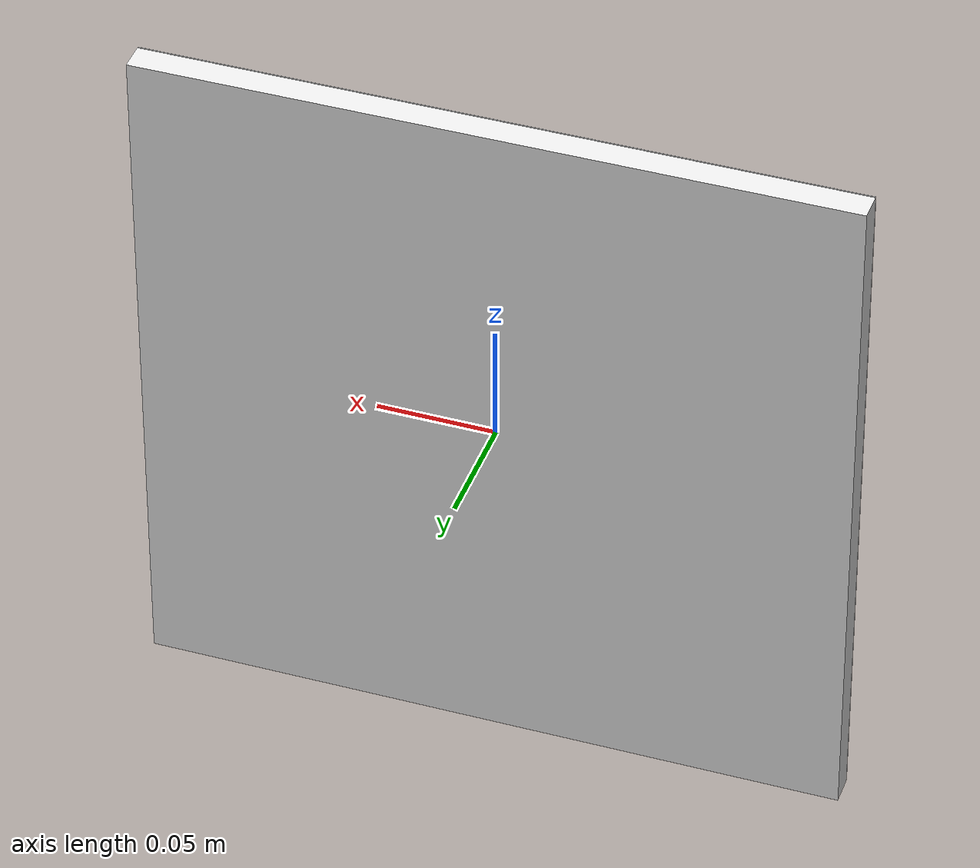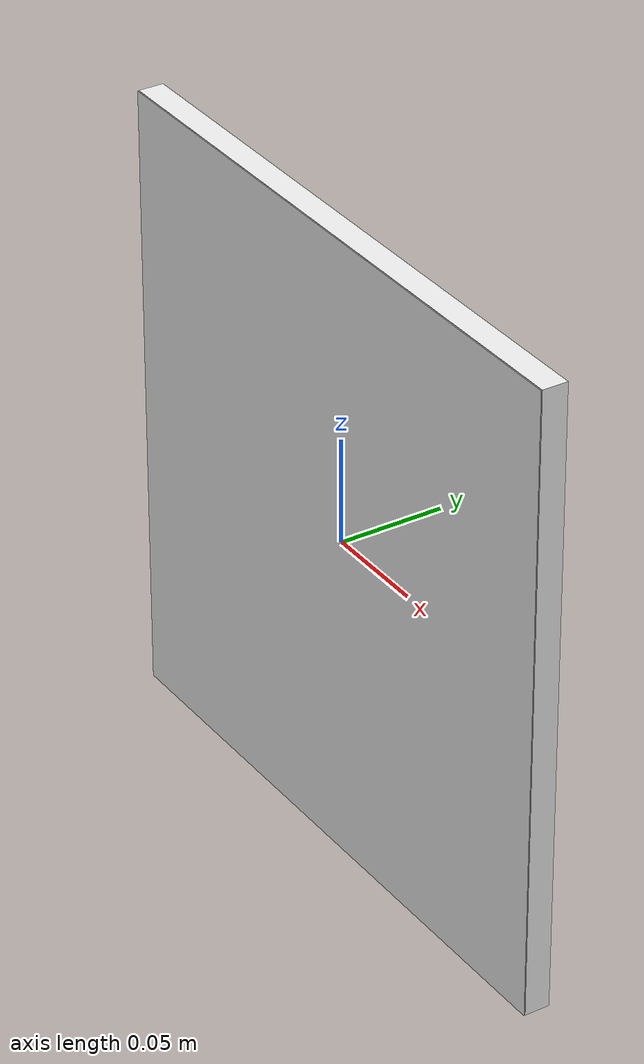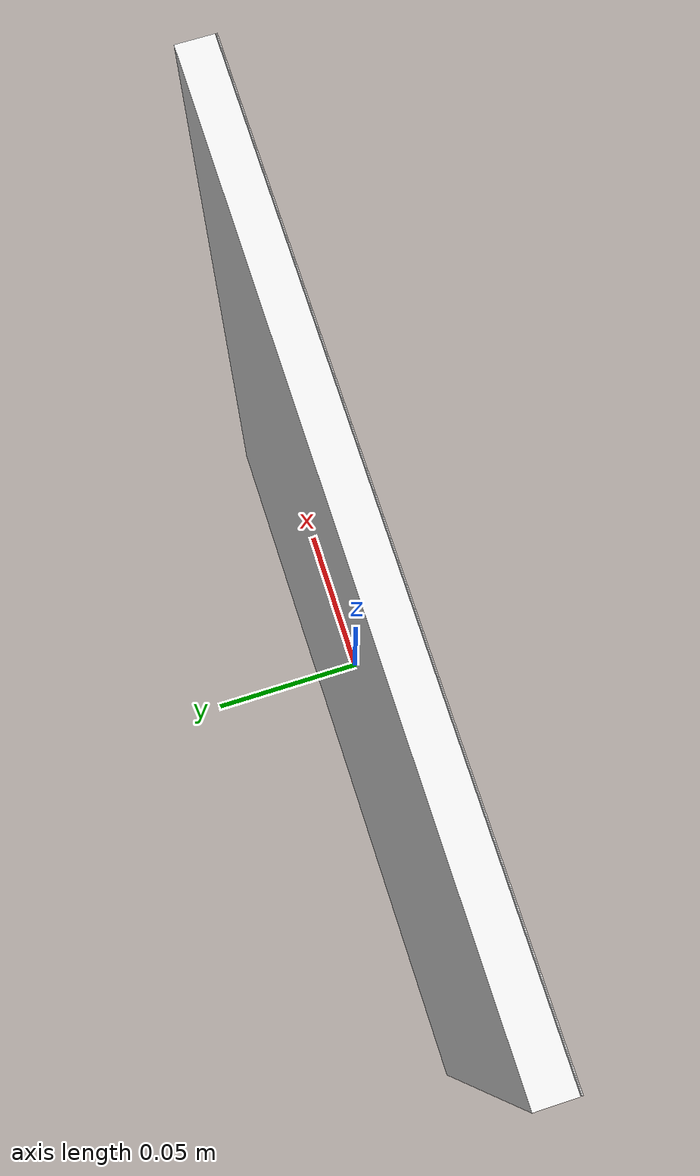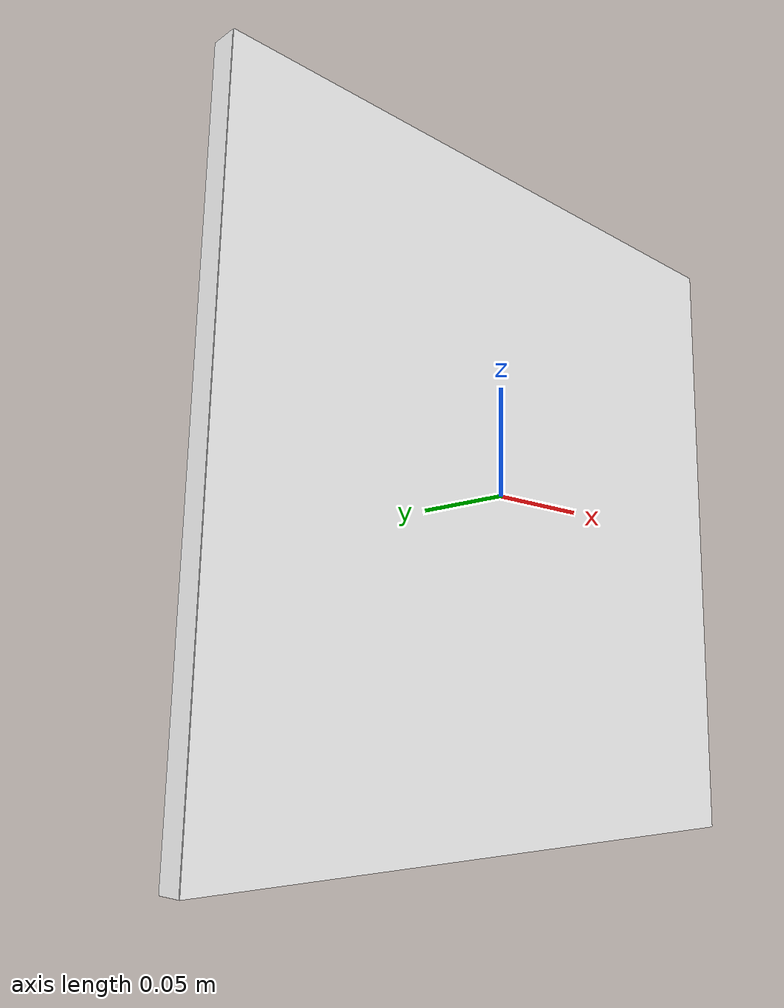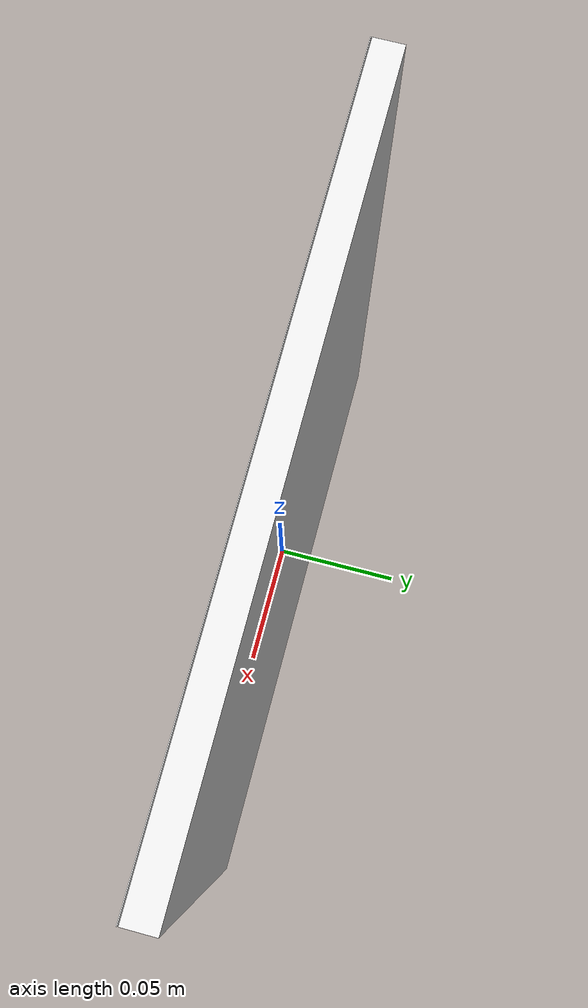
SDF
<?xml version="1.0"?>
<sdf version="1.6">
  <model name="charuco_calibration_board">
    <static>true</static>
    <link name="board_link">
      <collision name="board_collision">
        <geometry><box><size>0.30 0.012 0.30</size></box></geometry>
      </collision>
      <visual name="board_visual">
        <geometry><box><size>0.30 0.012 0.30</size></box></geometry>
        <material>
          <ambient>0.92 0.92 0.92 1</ambient>
          <diffuse>0.92 0.92 0.92 1</diffuse>
        </material>
      </visual>
      <visual name="charuco_visual">
        <pose>0 -0.0065 0 1.5707963 0 0</pose>
        <geometry><plane><normal>0 0 1</normal><size>0.30 0.30</size></plane></geometry>
        <material>
          <ambient>1 1 1 1</ambient>
          <diffuse>1 1 1 1</diffuse>
          <pbr>
            <metal>
              <albedo_map>model://charuco_calibration_board/materials/textures/charuco_5x5.png</albedo_map>
            </metal>
          </pbr>
        </material>
      </visual>
    </link>
  </model>
</sdf>
